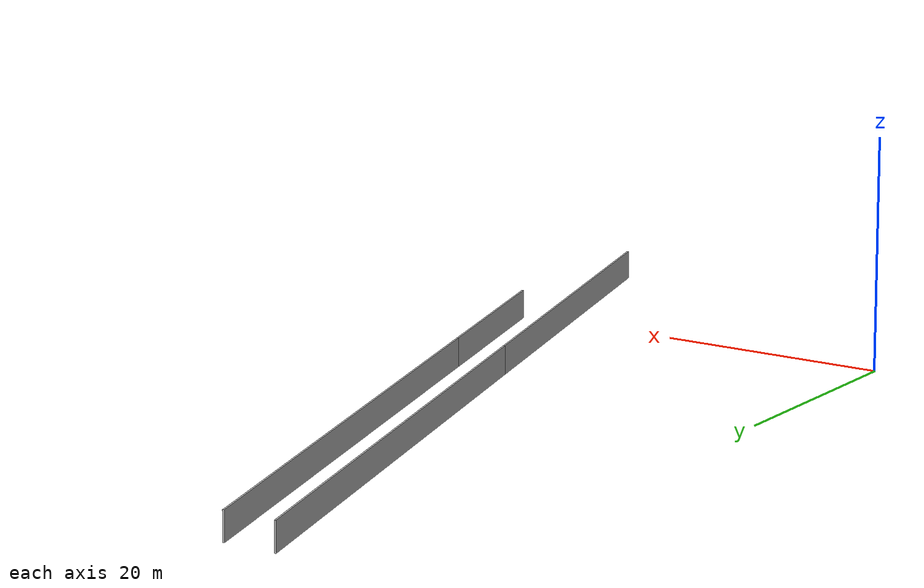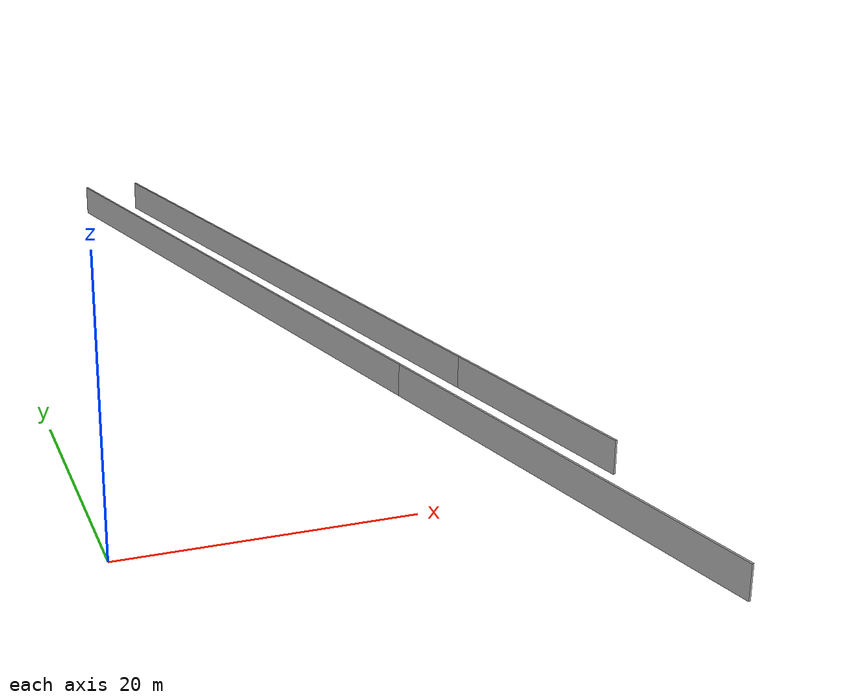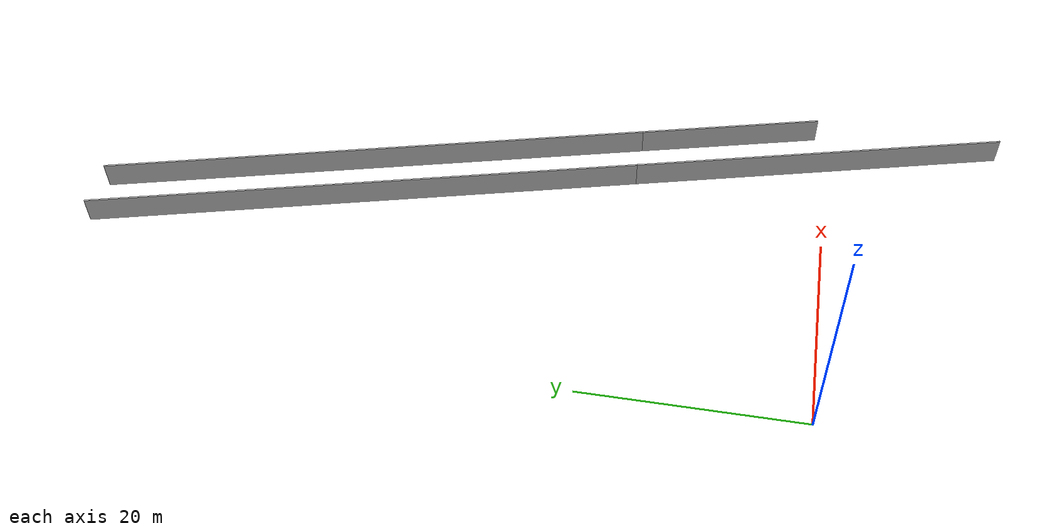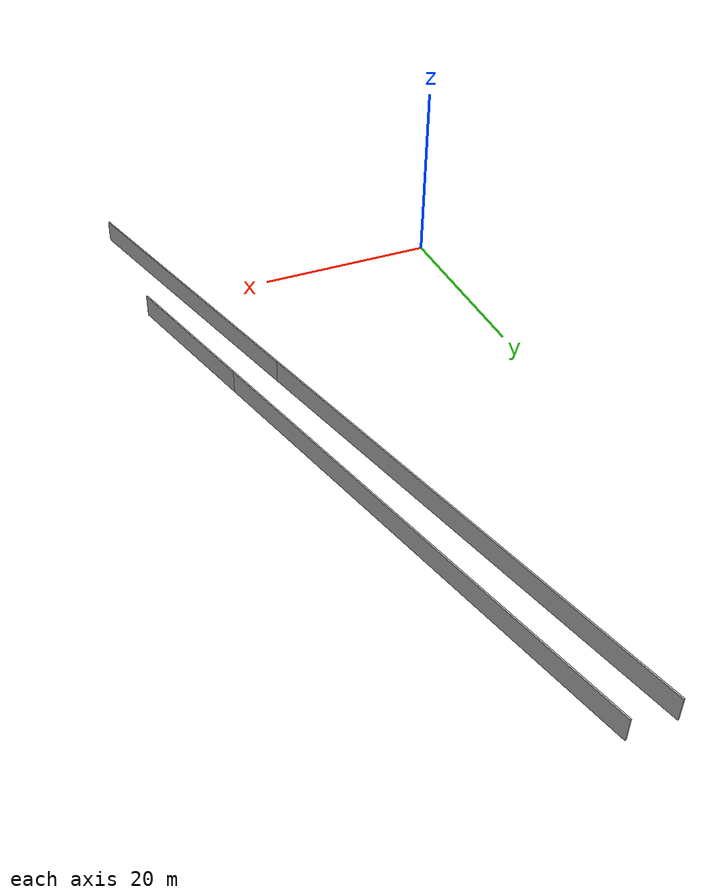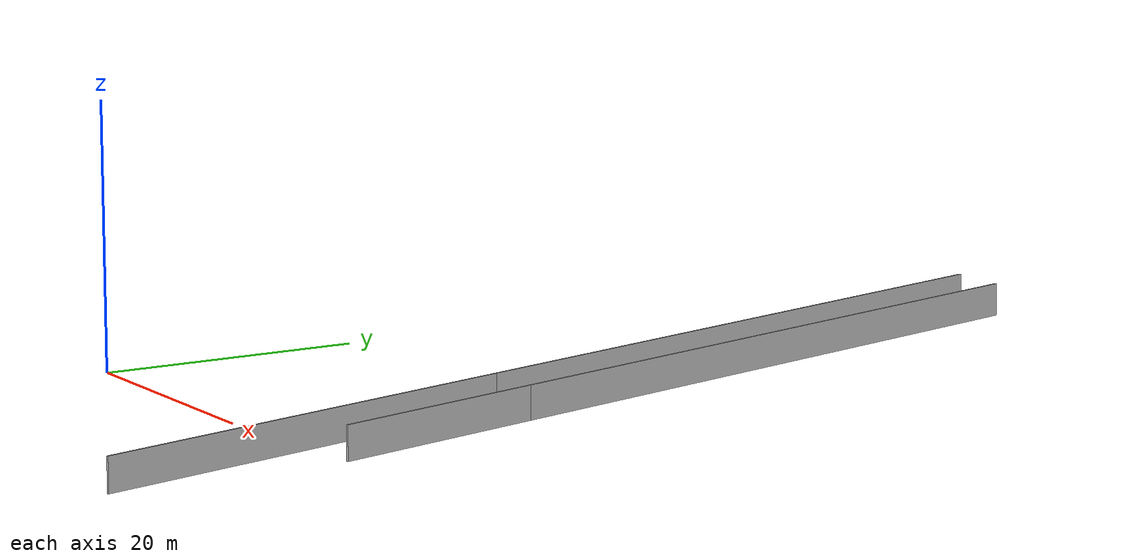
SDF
<?xml version="1.0" ?>
<sdf version="1.6">
  <model name="sps_0609">
    <pose frame="">0 0 0 0 -0 0</pose>
    <static>1</static>
    <self_collide>0</self_collide>
    <allow_auto_disable>0</allow_auto_disable>
    <link name="Wall97">
      <kinematic>0</kinematic>
      <gravity>1</gravity>
      <self_collide>0</self_collide>
      <collision name="collision">
        <geometry>
          <box>
            <size>17.3439 0.15 2.5</size>
          </box>
        </geometry>
        <pose frame="">0 0 0 0 -0 0</pose>
      </collision>
      <visual name="visual">
        <geometry>
          <box>
            <size>17.3439 0.15 2.5</size>
          </box>
        </geometry>
        <pose frame="">0 0 0 0 -0 0</pose>
        <cast_shadows>1</cast_shadows>
        <transparency>0.0</transparency>
      </visual>
      <pose frame="">32.2365 9.51357 1.25 0 -0 1.83122</pose>
    </link>
    <link name="Wall98">
      <kinematic>0</kinematic>
      <gravity>1</gravity>
      <self_collide>0</self_collide>
      <collision name="collision">
        <geometry>
          <box>
            <size>51.7448 0.15 2.5</size>
          </box>
        </geometry>
        <pose frame="">0 0 0 0 -0 0</pose>
      </collision>
      <visual name="visual">
        <geometry>
          <box>
            <size>51.7448 0.15 2.5</size>
          </box>
        </geometry>
        <pose frame="">0 0 0 0 -0 0</pose>
        <cast_shadows>1</cast_shadows>
        <transparency>0.0</transparency>
      </visual>
      <pose frame="">23.3416 42.8931 1.25 0 -0 1.83122</pose>
    </link>
    <link name="Wall503">
      <kinematic>0</kinematic>
      <gravity>1</gravity>
      <self_collide>0</self_collide>
      <collision name="collision">
        <geometry>
          <box>
            <size>35.4321 0.15 2.5</size>
          </box>
        </geometry>
        <pose frame="">0 0 0 0 -0 0</pose>
      </collision>
      <visual name="visual">
        <geometry>
          <box>
            <size>35.4321 0.15 2.5</size>
          </box>
        </geometry>
        <pose frame="">0 0 0 0 -0 0</pose>
        <cast_shadows>1</cast_shadows>
        <transparency>0.0</transparency>
      </visual>
      <pose frame="">29.9077 0.774423 1.25 0 -0 1.83122</pose>
    </link>
    <link name="Wall504">
      <kinematic>0</kinematic>
      <gravity>1</gravity>
      <self_collide>0</self_collide>
      <collision name="collision">
        <geometry>
          <box>
            <size>51.7448 0.15 2.5</size>
          </box>
        </geometry>
        <pose frame="">0 0 0 0 -0 0</pose>
      </collision>
      <visual name="visual">
        <geometry>
          <box>
            <size>51.7448 0.15 2.5</size>
          </box>
        </geometry>
        <pose frame="">0 0 0 0 -0 0</pose>
        <cast_shadows>1</cast_shadows>
        <transparency>0.0</transparency>
      </visual>
      <pose frame="">18.6839 42.8931 1.25 0 -0 1.83122</pose>
    </link>
  </model>
</sdf>
